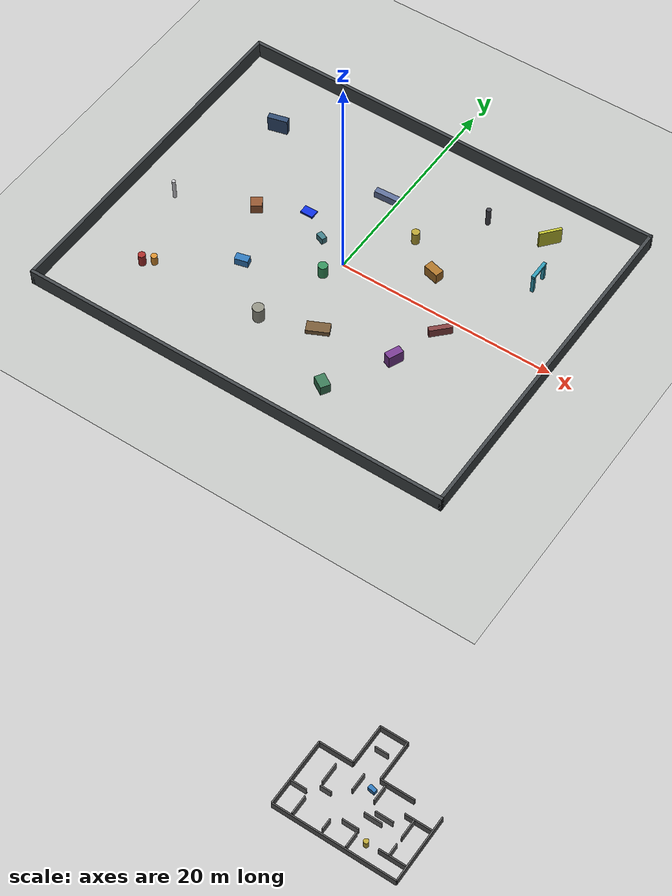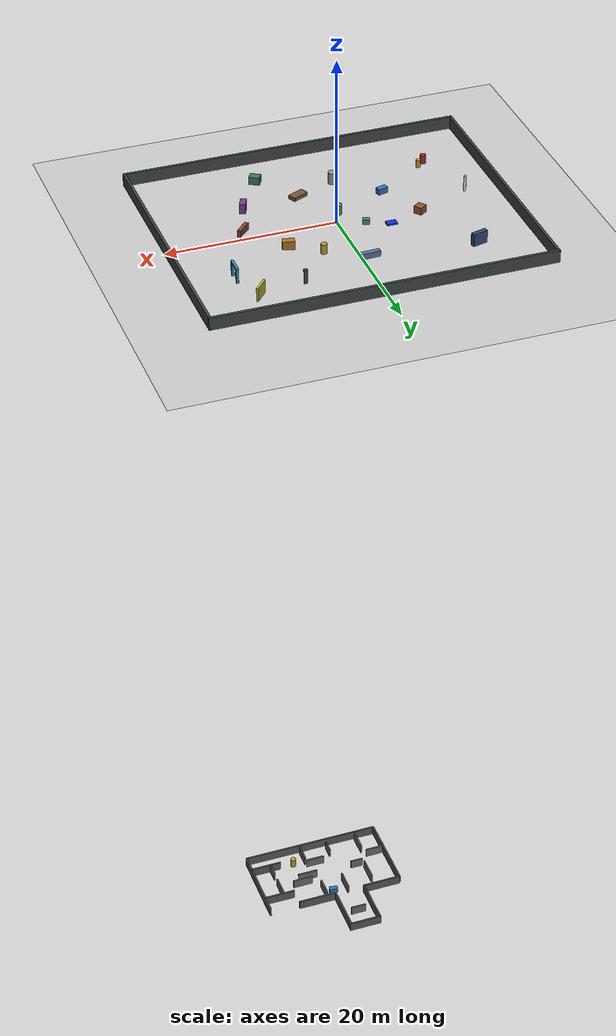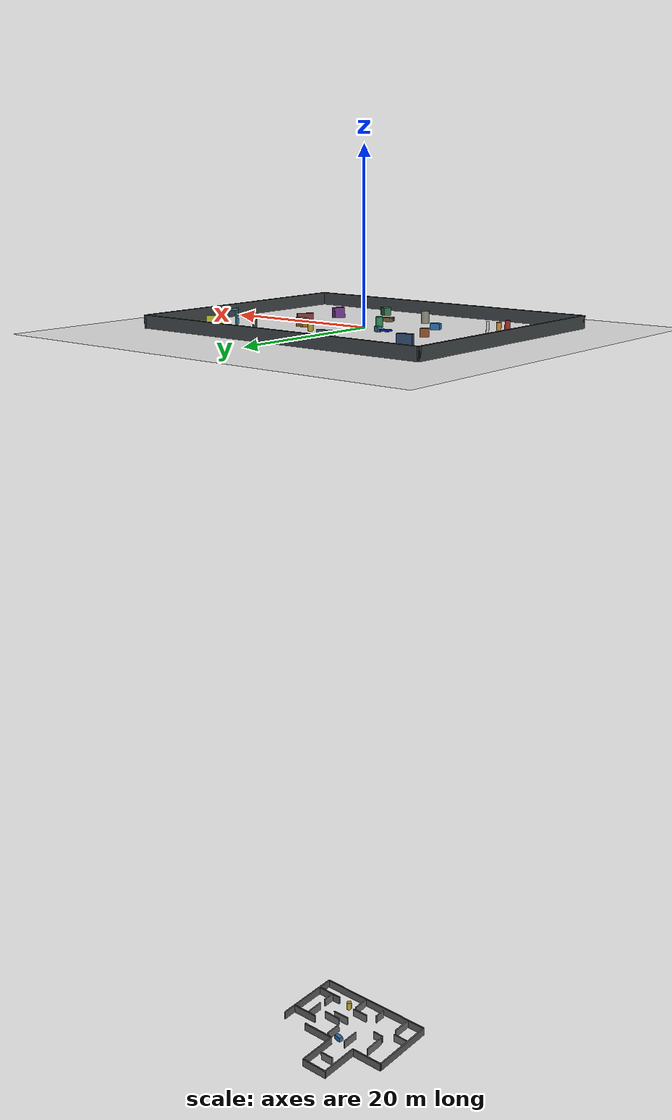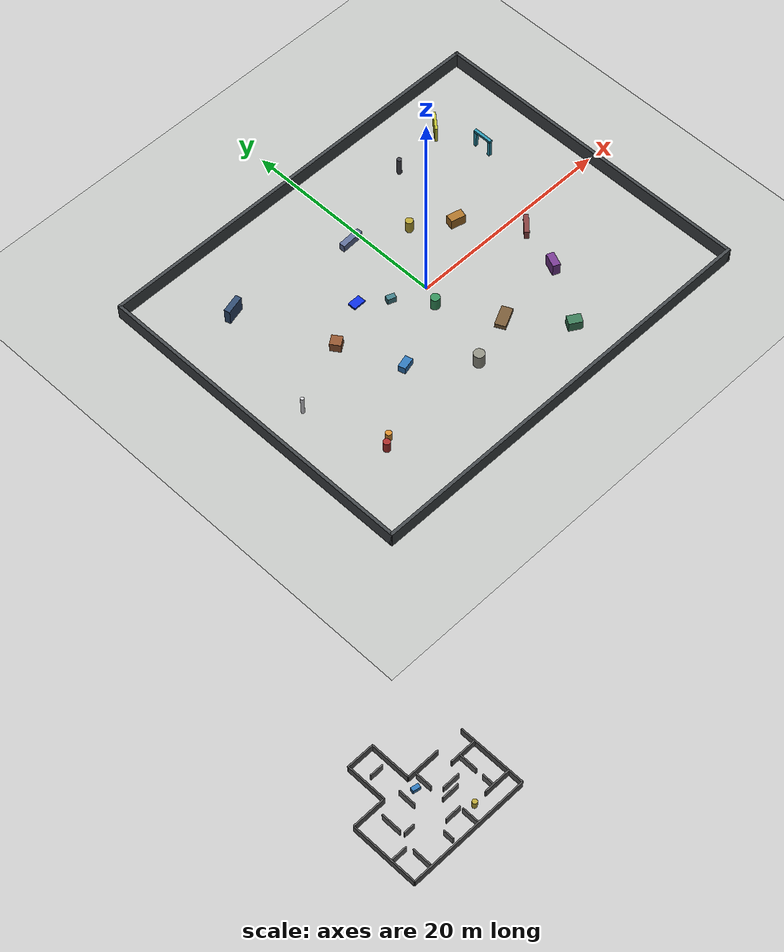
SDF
<?xml version="1.0"?>
<!-- Gazebo Harmonic world for the ROS 2 Jazzy mapping demo. -->
<sdf version="1.10">
  <world name="building_slam_world">
    <!-- Fast physics step keeps odometry and sensor updates smooth. -->
    <physics name="1ms" type="ignored">
      <max_step_size>0.001</max_step_size>
      <real_time_factor>1.0</real_time_factor>
    </physics>

    <!-- Core Gazebo systems: physics, GUI commands, scene updates, sensors, IMU. -->
    <plugin filename="gz-sim-physics-system" name="gz::sim::systems::Physics"/>
    <plugin filename="gz-sim-user-commands-system" name="gz::sim::systems::UserCommands"/>
    <plugin filename="gz-sim-scene-broadcaster-system" name="gz::sim::systems::SceneBroadcaster"/>
    <plugin filename="gz-sim-sensors-system" name="gz::sim::systems::Sensors">
      <render_engine>ogre2</render_engine>
    </plugin>
    <plugin filename="gz-sim-imu-system" name="gz::sim::systems::Imu"/>

    <!-- Directional light provides stable shadows and scene depth cues. -->
    <light type="directional" name="sun">
      <cast_shadows>true</cast_shadows>
      <pose>0 0 10 0 0 0</pose>
      <diffuse>0.8 0.8 0.8 1</diffuse>
      <specular>0.2 0.2 0.2 1</specular>
      <attenuation>
        <range>1000</range>
        <constant>0.9</constant>
        <linear>0.01</linear>
        <quadratic>0.001</quadratic>
      </attenuation>
      <direction>-0.5 0.1 -0.9</direction>
    </light>

    <!-- Flat ground plane for the cuboid robot and obstacle environment. -->
    <model name="ground_plane">
      <static>true</static>
      <link name="link">
        <collision name="collision">
          <geometry>
            <plane>
              <normal>0 0 1</normal>
              <size>40 32</size>
            </plane>
          </geometry>
        </collision>
        <visual name="visual">
          <geometry>
            <plane>
              <normal>0 0 1</normal>
              <size>40 32</size>
            </plane>
          </geometry>
          <material>
            <ambient>0.72 0.74 0.72 1</ambient>
            <diffuse>0.72 0.74 0.72 1</diffuse>
            <specular>0.1 0.1 0.1 1</specular>
          </material>
        </visual>
      </link>
    </model>

    <!-- Perimeter wall enclosing the full environment. -->
    <model name="environment_perimeter_wall">
      <static>true</static>

      <link name="perimeter_north_wall">
        <pose>0 15.85 0.75 0 0 0</pose>
        <collision name="collision"><geometry><box><size>40.0 0.3 1.5</size></box></geometry></collision>
        <visual name="visual"><geometry><box><size>40.0 0.3 1.5</size></box></geometry><material><ambient>0.25 0.27 0.28 1</ambient><diffuse>0.25 0.27 0.28 1</diffuse></material></visual>
      </link>
      <link name="perimeter_south_wall">
        <pose>0 -15.85 0.75 0 0 0</pose>
        <collision name="collision"><geometry><box><size>40.0 0.3 1.5</size></box></geometry></collision>
        <visual name="visual"><geometry><box><size>40.0 0.3 1.5</size></box></geometry><material><ambient>0.25 0.27 0.28 1</ambient><diffuse>0.25 0.27 0.28 1</diffuse></material></visual>
      </link>
      <link name="perimeter_west_wall">
        <pose>-19.85 0 0.75 0 0 0</pose>
        <collision name="collision"><geometry><box><size>0.3 32.0 1.5</size></box></geometry></collision>
        <visual name="visual"><geometry><box><size>0.3 32.0 1.5</size></box></geometry><material><ambient>0.25 0.27 0.28 1</ambient><diffuse>0.25 0.27 0.28 1</diffuse></material></visual>
      </link>
      <link name="perimeter_east_wall">
        <pose>19.85 0 0.75 0 0 0</pose>
        <collision name="collision"><geometry><box><size>0.3 32.0 1.5</size></box></geometry></collision>
        <visual name="visual"><geometry><box><size>0.3 32.0 1.5</size></box></geometry><material><ambient>0.25 0.27 0.28 1</ambient><diffuse>0.25 0.27 0.28 1</diffuse></material></visual>
      </link>
    </model>

    <!-- Dense interior floor plan kept below the floor so only the perimeter bounds the map. -->
    <model name="building_floor_plan">
      <pose>0 0 -100 0 0 0</pose>
      <static>true</static>

      <!-- Outer walls -->
      <link name="north_wall_left">
        <pose>-4.5 5 0.6 0 0 0</pose>
        <collision name="collision"><geometry><box><size>5.0 0.2 1.2</size></box></geometry></collision>
        <visual name="visual"><geometry><box><size>5.0 0.2 1.2</size></box></geometry><material><ambient>0.35 0.35 0.35 1</ambient><diffuse>0.35 0.35 0.35 1</diffuse></material></visual>
      </link>
      <link name="north_wall_right">
        <pose>4.5 5 0.6 0 0 0</pose>
        <collision name="collision"><geometry><box><size>5.0 0.2 1.2</size></box></geometry></collision>
        <visual name="visual"><geometry><box><size>5.0 0.2 1.2</size></box></geometry><material><ambient>0.35 0.35 0.35 1</ambient><diffuse>0.35 0.35 0.35 1</diffuse></material></visual>
      </link>
      <link name="south_wall">
        <pose>2 -5 0.6 0 0 0</pose>
        <collision name="collision"><geometry><box><size>18 0.2 1.2</size></box></geometry></collision>
        <visual name="visual"><geometry><box><size>18 0.2 1.2</size></box></geometry><material><ambient>0.35 0.35 0.35 1</ambient><diffuse>0.35 0.35 0.35 1</diffuse></material></visual>
      </link>
      <link name="west_wall">
        <pose>-7 0 0.6 0 0 0</pose>
        <collision name="collision"><geometry><box><size>0.2 10 1.2</size></box></geometry></collision>
        <visual name="visual"><geometry><box><size>0.2 10 1.2</size></box></geometry><material><ambient>0.35 0.35 0.35 1</ambient><diffuse>0.35 0.35 0.35 1</diffuse></material></visual>
      </link>
      <link name="east_wall">
        <pose>11 0 0.6 0 0 0</pose>
        <collision name="collision"><geometry><box><size>0.2 10 1.2</size></box></geometry></collision>
        <visual name="visual"><geometry><box><size>0.2 10 1.2</size></box></geometry><material><ambient>0.35 0.35 0.35 1</ambient><diffuse>0.35 0.35 0.35 1</diffuse></material></visual>
      </link>
      <link name="north_extension_west_wall">
        <pose>-2.0 8.0 0.6 0 0 0</pose>
        <collision name="collision"><geometry><box><size>0.2 6.0 1.2</size></box></geometry></collision>
        <visual name="visual"><geometry><box><size>0.2 6.0 1.2</size></box></geometry><material><ambient>0.35 0.35 0.35 1</ambient><diffuse>0.35 0.35 0.35 1</diffuse></material></visual>
      </link>
      <link name="north_extension_east_wall">
        <pose>2.0 8.0 0.6 0 0 0</pose>
        <collision name="collision"><geometry><box><size>0.2 6.0 1.2</size></box></geometry></collision>
        <visual name="visual"><geometry><box><size>0.2 6.0 1.2</size></box></geometry><material><ambient>0.35 0.35 0.35 1</ambient><diffuse>0.35 0.35 0.35 1</diffuse></material></visual>
      </link>
      <link name="north_extension_top_wall">
        <pose>0 11 0.6 0 0 0</pose>
        <collision name="collision"><geometry><box><size>4.2 0.2 1.2</size></box></geometry></collision>
        <visual name="visual"><geometry><box><size>4.2 0.2 1.2</size></box></geometry><material><ambient>0.35 0.35 0.35 1</ambient><diffuse>0.35 0.35 0.35 1</diffuse></material></visual>
      </link>
      <link name="east_wing_top_wall">
        <pose>9 2.8 0.6 0 0 0</pose>
        <collision name="collision"><geometry><box><size>4.0 0.2 1.2</size></box></geometry></collision>
        <visual name="visual"><geometry><box><size>4.0 0.2 1.2</size></box></geometry><material><ambient>0.35 0.35 0.35 1</ambient><diffuse>0.35 0.35 0.35 1</diffuse></material></visual>
      </link>
      <link name="east_wing_bottom_wall">
        <pose>9 -2.8 0.6 0 0 0</pose>
        <collision name="collision"><geometry><box><size>4.0 0.2 1.2</size></box></geometry></collision>
        <visual name="visual"><geometry><box><size>4.0 0.2 1.2</size></box></geometry><material><ambient>0.35 0.35 0.35 1</ambient><diffuse>0.35 0.35 0.35 1</diffuse></material></visual>
      </link>

      <!-- Interior rooms and corridors -->
      <link name="left_vertical_room_wall">
        <pose>-3.6 2.2 0.6 0 0 0</pose>
        <collision name="collision"><geometry><box><size>0.18 3.0 1.2</size></box></geometry></collision>
        <visual name="visual"><geometry><box><size>0.18 3.0 1.2</size></box></geometry><material><ambient>0.42 0.42 0.42 1</ambient><diffuse>0.42 0.42 0.42 1</diffuse></material></visual>
      </link>
      <link name="left_room_bottom_wall">
        <pose>-5.7 -1.2 0.6 0 0 0</pose>
        <collision name="collision"><geometry><box><size>2.3 0.18 1.2</size></box></geometry></collision>
        <visual name="visual"><geometry><box><size>2.3 0.18 1.2</size></box></geometry><material><ambient>0.42 0.42 0.42 1</ambient><diffuse>0.42 0.42 0.42 1</diffuse></material></visual>
      </link>
      <link name="center_vertical_wall_upper">
        <pose>0.0 3.2 0.6 0 0 0</pose>
        <collision name="collision"><geometry><box><size>0.18 2.6 1.2</size></box></geometry></collision>
        <visual name="visual"><geometry><box><size>0.18 2.6 1.2</size></box></geometry><material><ambient>0.42 0.42 0.42 1</ambient><diffuse>0.42 0.42 0.42 1</diffuse></material></visual>
      </link>
      <link name="center_vertical_wall_lower">
        <pose>0.0 -3.6 0.6 0 0 0</pose>
        <collision name="collision"><geometry><box><size>0.18 1.6 1.2</size></box></geometry></collision>
        <visual name="visual"><geometry><box><size>0.18 1.6 1.2</size></box></geometry><material><ambient>0.42 0.42 0.42 1</ambient><diffuse>0.42 0.42 0.42 1</diffuse></material></visual>
      </link>
      <link name="middle_horizontal_wall_left">
        <pose>-2.7 0.2 0.6 0 0 0</pose>
        <collision name="collision"><geometry><box><size>1.6 0.18 1.2</size></box></geometry></collision>
        <visual name="visual"><geometry><box><size>1.6 0.18 1.2</size></box></geometry><material><ambient>0.42 0.42 0.42 1</ambient><diffuse>0.42 0.42 0.42 1</diffuse></material></visual>
      </link>
      <link name="middle_horizontal_wall_right">
        <pose>4.2 0.2 0.6 0 0 0</pose>
        <collision name="collision"><geometry><box><size>2.6 0.18 1.2</size></box></geometry></collision>
        <visual name="visual"><geometry><box><size>2.6 0.18 1.2</size></box></geometry><material><ambient>0.42 0.42 0.42 1</ambient><diffuse>0.42 0.42 0.42 1</diffuse></material></visual>
      </link>
      <link name="right_room_wall">
        <pose>3.0 3.4 0.6 0 0 0</pose>
        <collision name="collision"><geometry><box><size>0.18 2.4 1.2</size></box></geometry></collision>
        <visual name="visual"><geometry><box><size>0.18 2.4 1.2</size></box></geometry><material><ambient>0.42 0.42 0.42 1</ambient><diffuse>0.42 0.42 0.42 1</diffuse></material></visual>
      </link>
      <link name="right_room_bottom_wall">
        <pose>5.2 1.1 0.6 0 0 0</pose>
        <collision name="collision"><geometry><box><size>2.6 0.18 1.2</size></box></geometry></collision>
        <visual name="visual"><geometry><box><size>2.6 0.18 1.2</size></box></geometry><material><ambient>0.42 0.42 0.42 1</ambient><diffuse>0.42 0.42 0.42 1</diffuse></material></visual>
      </link>
      <link name="east_wing_divider_top">
        <pose>8.4 1.4 0.6 0 0 0</pose>
        <collision name="collision"><geometry><box><size>0.18 2.8 1.2</size></box></geometry></collision>
        <visual name="visual"><geometry><box><size>0.18 2.8 1.2</size></box></geometry><material><ambient>0.42 0.42 0.42 1</ambient><diffuse>0.42 0.42 0.42 1</diffuse></material></visual>
      </link>
      <link name="east_wing_divider_bottom">
        <pose>8.4 -1.9 0.6 0 0 0</pose>
        <collision name="collision"><geometry><box><size>0.18 1.8 1.2</size></box></geometry></collision>
        <visual name="visual"><geometry><box><size>0.18 1.8 1.2</size></box></geometry><material><ambient>0.42 0.42 0.42 1</ambient><diffuse>0.42 0.42 0.42 1</diffuse></material></visual>
      </link>
      <link name="north_extension_room_wall">
        <pose>0 8.3 0.6 0 0 0</pose>
        <collision name="collision"><geometry><box><size>2.0 0.18 1.2</size></box></geometry></collision>
        <visual name="visual"><geometry><box><size>2.0 0.18 1.2</size></box></geometry><material><ambient>0.42 0.42 0.42 1</ambient><diffuse>0.42 0.42 0.42 1</diffuse></material></visual>
      </link>
      <link name="bottom_room_wall_left">
        <pose>-4.2 -3.4 0.6 0 0 0</pose>
        <collision name="collision"><geometry><box><size>0.18 2.8 1.2</size></box></geometry></collision>
        <visual name="visual"><geometry><box><size>0.18 2.8 1.2</size></box></geometry><material><ambient>0.42 0.42 0.42 1</ambient><diffuse>0.42 0.42 0.42 1</diffuse></material></visual>
      </link>
      <link name="bottom_room_wall_right">
        <pose>3.6 -3.6 0.6 0 0 0</pose>
        <collision name="collision"><geometry><box><size>0.18 2.4 1.2</size></box></geometry></collision>
        <visual name="visual"><geometry><box><size>0.18 2.4 1.2</size></box></geometry><material><ambient>0.42 0.42 0.42 1</ambient><diffuse>0.42 0.42 0.42 1</diffuse></material></visual>
      </link>
      <link name="bottom_corridor_wall">
        <pose>2.4 -2.0 0.6 0 0 0</pose>
        <collision name="collision"><geometry><box><size>2.4 0.18 1.2</size></box></geometry></collision>
        <visual name="visual"><geometry><box><size>2.4 0.18 1.2</size></box></geometry><material><ambient>0.42 0.42 0.42 1</ambient><diffuse>0.42 0.42 0.42 1</diffuse></material></visual>
      </link>

      <!-- Furniture-like obstacles for richer lidar features -->
      <link name="table_block_b">
        <pose>1.8 3.6 0.35 0 0 -0.2</pose>
        <collision name="collision"><geometry><box><size>1.1 0.6 0.7</size></box></geometry></collision>
        <visual name="visual"><geometry><box><size>1.1 0.6 0.7</size></box></geometry><material><ambient>0.18 0.45 0.7 1</ambient><diffuse>0.18 0.45 0.7 1</diffuse></material></visual>
      </link>
      <link name="pillar_a">
        <pose>5.2 -2.8 0.6 0 0 0</pose>
        <collision name="collision"><geometry><cylinder><radius>0.35</radius><length>1.2</length></cylinder></geometry></collision>
        <visual name="visual"><geometry><cylinder><radius>0.35</radius><length>1.2</length></cylinder></geometry><material><ambient>0.7 0.62 0.2 1</ambient><diffuse>0.7 0.62 0.2 1</diffuse></material></visual>
      </link>
    </model>

    <!-- Sparse non-wall landmarks for SLAM scan-matching in the open perimeter. -->
    <model name="sparse_slam_landmarks">
      <static>true</static>
      <link name="low_table">
        <pose>-7.0 -4.5 0.35 0 0 0.25</pose>
        <collision name="collision"><geometry><box><size>1.2 0.7 0.7</size></box></geometry></collision>
        <visual name="visual"><geometry><box><size>1.2 0.7 0.7</size></box></geometry><material><ambient>0.18 0.45 0.7 1</ambient><diffuse>0.18 0.45 0.7 1</diffuse></material></visual>
      </link>
      <link name="pillar_west">
        <pose>3.5 5.5 0.6 0 0 0</pose>
        <collision name="collision"><geometry><cylinder><radius>0.35</radius><length>1.2</length></cylinder></geometry></collision>
        <visual name="visual"><geometry><cylinder><radius>0.35</radius><length>1.2</length></cylinder></geometry><material><ambient>0.7 0.62 0.2 1</ambient><diffuse>0.7 0.62 0.2 1</diffuse></material></visual>
      </link>
      <link name="tall_marker">
        <pose>9.0 -6.0 0.6 0 0 -0.4</pose>
        <collision name="collision"><geometry><box><size>0.7 1.4 1.2</size></box></geometry></collision>
        <visual name="visual"><geometry><box><size>0.7 1.4 1.2</size></box></geometry><material><ambient>0.45 0.22 0.55 1</ambient><diffuse>0.45 0.22 0.55 1</diffuse></material></visual>
      </link>
      <link name="crate_cluster_west">
        <pose>-9.5 1.0 0.45 0 0 0.6</pose>
        <collision name="collision"><geometry><box><size>1.0 1.0 0.9</size></box></geometry></collision>
        <visual name="visual"><geometry><box><size>1.0 1.0 0.9</size></box></geometry><material><ambient>0.55 0.32 0.18 1</ambient><diffuse>0.55 0.32 0.18 1</diffuse></material></visual>
      </link>
      <link name="pillar_center">
        <pose>-0.8 -1.8 0.6 0 0 0</pose>
        <collision name="collision"><geometry><cylinder><radius>0.42</radius><length>1.2</length></cylinder></geometry></collision>
        <visual name="visual"><geometry><cylinder><radius>0.42</radius><length>1.2</length></cylinder></geometry><material><ambient>0.2 0.55 0.35 1</ambient><diffuse>0.2 0.55 0.35 1</diffuse></material></visual>
      </link>
      <link name="bench_north">
        <pose>-1.0 8.0 0.35 0 0 0.05</pose>
        <collision name="collision"><geometry><box><size>2.2 0.55 0.7</size></box></geometry></collision>
        <visual name="visual"><geometry><box><size>2.2 0.55 0.7</size></box></geometry><material><ambient>0.36 0.42 0.58 1</ambient><diffuse>0.36 0.42 0.58 1</diffuse></material></visual>
      </link>
      <link name="crate_east">
        <pose>6.8 3.2 0.5 0 0 -0.25</pose>
        <collision name="collision"><geometry><box><size>1.4 0.8 1.0</size></box></geometry></collision>
        <visual name="visual"><geometry><box><size>1.4 0.8 1.0</size></box></geometry><material><ambient>0.65 0.44 0.16 1</ambient><diffuse>0.65 0.44 0.16 1</diffuse></material></visual>
      </link>
      <link name="round_column_south">
        <pose>-2.5 -8.5 0.7 0 0 0</pose>
        <collision name="collision"><geometry><cylinder><radius>0.5</radius><length>1.4</length></cylinder></geometry></collision>
        <visual name="visual"><geometry><cylinder><radius>0.5</radius><length>1.4</length></cylinder></geometry><material><ambient>0.55 0.55 0.50 1</ambient><diffuse>0.55 0.55 0.50 1</diffuse></material></visual>
      </link>
      <link name="angled_barrier_southeast">
        <pose>10.5 -1.5 0.4 0 0 0.8</pose>
        <collision name="collision"><geometry><box><size>2.0 0.45 0.8</size></box></geometry></collision>
        <visual name="visual"><geometry><box><size>2.0 0.45 0.8</size></box></geometry><material><ambient>0.5 0.24 0.24 1</ambient><diffuse>0.5 0.24 0.24 1</diffuse></material></visual>
      </link>
      <link name="short_block_near_start">
        <pose>-3.0 1.2 0.3 0 0 -0.35</pose>
        <collision name="collision"><geometry><box><size>0.8 0.5 0.6</size></box></geometry></collision>
        <visual name="visual"><geometry><box><size>0.8 0.5 0.6</size></box></geometry><material><ambient>0.25 0.48 0.52 1</ambient><diffuse>0.25 0.48 0.52 1</diffuse></material></visual>
      </link>
      <link name="equipment_rack_northwest">
        <pose>-13.2 9.4 0.75 0 0 0.25</pose>
        <collision name="collision"><geometry><box><size>1.8 0.55 1.5</size></box></geometry></collision>
        <visual name="visual"><geometry><box><size>1.8 0.55 1.5</size></box></geometry><material><ambient>0.18 0.28 0.42 1</ambient><diffuse>0.18 0.28 0.42 1</diffuse></material></visual>
      </link>
      <link name="barrel_pair_southwest_a">
        <pose>-13.8 -9.2 0.55 0 0 0</pose>
        <collision name="collision"><geometry><cylinder><radius>0.32</radius><length>1.1</length></cylinder></geometry></collision>
        <visual name="visual"><geometry><cylinder><radius>0.32</radius><length>1.1</length></cylinder></geometry><material><ambient>0.64 0.17 0.16 1</ambient><diffuse>0.64 0.17 0.16 1</diffuse></material></visual>
      </link>
      <link name="barrel_pair_southwest_b">
        <pose>-13.0 -8.6 0.45 0 0 0</pose>
        <collision name="collision"><geometry><cylinder><radius>0.28</radius><length>0.9</length></cylinder></geometry></collision>
        <visual name="visual"><geometry><cylinder><radius>0.28</radius><length>0.9</length></cylinder></geometry><material><ambient>0.82 0.54 0.18 1</ambient><diffuse>0.82 0.54 0.18 1</diffuse></material></visual>
      </link>
      <link name="inspection_gate_east_left">
        <pose>14.3 6.5 0.9 0 0 0</pose>
        <collision name="collision"><geometry><box><size>0.28 0.28 1.8</size></box></geometry></collision>
        <visual name="visual"><geometry><box><size>0.28 0.28 1.8</size></box></geometry><material><ambient>0.18 0.58 0.68 1</ambient><diffuse>0.18 0.58 0.68 1</diffuse></material></visual>
      </link>
      <link name="inspection_gate_east_right">
        <pose>14.3 8.1 0.9 0 0 0</pose>
        <collision name="collision"><geometry><box><size>0.28 0.28 1.8</size></box></geometry></collision>
        <visual name="visual"><geometry><box><size>0.28 0.28 1.8</size></box></geometry><material><ambient>0.18 0.58 0.68 1</ambient><diffuse>0.18 0.58 0.68 1</diffuse></material></visual>
      </link>
      <link name="inspection_gate_east_top">
        <pose>14.3 7.3 1.75 0 0 0</pose>
        <collision name="collision"><geometry><box><size>0.3 1.9 0.22</size></box></geometry></collision>
        <visual name="visual"><geometry><box><size>0.3 1.9 0.22</size></box></geometry><material><ambient>0.18 0.58 0.68 1</ambient><diffuse>0.18 0.58 0.68 1</diffuse></material></visual>
      </link>
      <link name="low_pallets_center">
        <pose>2.2 -6.8 0.22 0 0 0.45</pose>
        <collision name="collision"><geometry><box><size>2.0 1.0 0.44</size></box></geometry></collision>
        <visual name="visual"><geometry><box><size>2.0 1.0 0.44</size></box></geometry><material><ambient>0.45 0.34 0.21 1</ambient><diffuse>0.45 0.34 0.21 1</diffuse></material></visual>
      </link>
      <link name="sensor_tripod_north">
        <pose>7.4 10.6 0.85 0 0 -0.15</pose>
        <collision name="collision"><geometry><cylinder><radius>0.22</radius><length>1.7</length></cylinder></geometry></collision>
        <visual name="visual"><geometry><cylinder><radius>0.22</radius><length>1.7</length></cylinder></geometry><material><ambient>0.25 0.25 0.28 1</ambient><diffuse>0.25 0.25 0.28 1</diffuse></material></visual>
      </link>
      <link name="bright_panel_northeast">
        <pose>12.8 11.6 0.8 0 0 -0.7</pose>
        <collision name="collision"><geometry><box><size>0.25 2.0 1.6</size></box></geometry></collision>
        <visual name="visual"><geometry><box><size>0.25 2.0 1.6</size></box></geometry><material><ambient>0.72 0.72 0.18 1</ambient><diffuse>0.72 0.72 0.18 1</diffuse></material></visual>
      </link>
      <link name="offset_crate_south">
        <pose>5.8 -11.4 0.48 0 0 -0.55</pose>
        <collision name="collision"><geometry><box><size>1.25 0.9 0.95</size></box></geometry></collision>
        <visual name="visual"><geometry><box><size>1.25 0.9 0.95</size></box></geometry><material><ambient>0.22 0.46 0.33 1</ambient><diffuse>0.22 0.46 0.33 1</diffuse></material></visual>
      </link>
      <link name="slender_marker_west">
        <pose>-16.0 -1.8 0.95 0 0 0</pose>
        <collision name="collision"><geometry><cylinder><radius>0.16</radius><length>1.9</length></cylinder></geometry></collision>
        <visual name="visual"><geometry><cylinder><radius>0.16</radius><length>1.9</length></cylinder></geometry><material><ambient>0.8 0.8 0.82 1</ambient><diffuse>0.8 0.8 0.82 1</diffuse></material></visual>
      </link>
    </model>

    <!-- The robot model is split into robot.sdf and resolved through model.config. -->
    <include>
      <uri>model://robot</uri>
      <pose>-5.4 2.8 0.12 0 0 0</pose>
    </include>
  </world>
</sdf>

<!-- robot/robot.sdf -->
<!-- Standalone hover-capable cuboid robot included by environment.world. -->
<sdf version="1.10">
  <model name="vehicle_blue" canonical_link="base_link">
    <!-- The visible robot is one flat cuboid that can translate in 3D. -->
    <link name="base_link">
      <pose relative_to="__model__">0 0 0.38 0 0 0</pose>
      <gravity>false</gravity>

      <!-- Inertia is sized for a 1.2 m x 0.8 m x 0.18 m cuboid. -->
      <inertial>
        <mass>4.0</mass>
        <inertia>
          <ixx>0.224</ixx>
          <ixy>0</ixy>
          <ixz>0</ixz>
          <iyy>0.491</iyy>
          <iyz>0</iyz>
          <izz>0.693</izz>
        </inertia>
      </inertial>

      <!-- A low-friction contact surface keeps floor contact gentle when descending. -->
      <collision name="collision">
        <geometry>
          <box>
            <size>1.2 0.8 0.18</size>
          </box>
        </geometry>
        <surface>
          <friction>
            <ode>
              <mu>0.1</mu>
              <mu2>0.1</mu2>
            </ode>
          </friction>
        </surface>
      </collision>

      <!-- The only visible body geometry: a blue, flat cuboid. -->
      <visual name="visual">
        <geometry>
          <box>
            <size>1.2 0.8 0.18</size>
          </box>
        </geometry>
        <material>
          <ambient>0.05 0.18 0.85 1</ambient>
          <diffuse>0.05 0.18 0.85 1</diffuse>
        </material>
      </visual>

      <!-- 3D lidar kept at the existing base_link-relative pose and topic. -->
      <sensor name="gpu_3d_lidar" type="gpu_lidar">
        <pose>0.45 0 0.32 0 0 0</pose>
        <topic>/points_raw</topic>
        <update_rate>10</update_rate>
        <ray>
          <scan>
            <horizontal>
              <samples>1024</samples>
              <resolution>1</resolution>
              <min_angle>-3.14159</min_angle>
              <max_angle>3.14159</max_angle>
            </horizontal>
            <vertical>
              <samples>16</samples>
              <resolution>1</resolution>
              <min_angle>-0.261799</min_angle>
              <max_angle>0.261799</max_angle>
            </vertical>
          </scan>
          <range>
            <min>0.08</min>
            <max>12.0</max>
            <resolution>0.01</resolution>
          </range>
        </ray>
        <always_on>1</always_on>
        <visualize>true</visualize>
      </sensor>

      <!-- Front RGB camera kept at the existing pose and topic. -->
      <sensor name="front_camera" type="camera">
        <pose>0.68 0 0.36 0 0 0</pose>
        <topic>/front_camera/image</topic>
        <update_rate>30</update_rate>
        <camera>
          <horizontal_fov>1.3962634</horizontal_fov>
          <image>
            <width>960</width>
            <height>540</height>
            <format>R8G8B8</format>
          </image>
          <clip>
            <near>0.05</near>
            <far>100.0</far>
          </clip>
        </camera>
        <always_on>1</always_on>
        <visualize>true</visualize>
      </sensor>

      <!-- IMU kept on the base frame so /imu remains unchanged. -->
      <sensor name="imu_sensor" type="imu">
        <pose>0 0 0 0 0 0</pose>
        <topic>/imu</topic>
        <update_rate>100</update_rate>
        <always_on>1</always_on>
      </sensor>
    </link>

    <!-- VelocityControl consumes /cmd_vel and directly moves the model in 3D. -->
    <plugin filename="gz-sim-velocity-control-system" name="gz::sim::systems::VelocityControl">
      <topic>/cmd_vel</topic>
    </plugin>

    <!-- OdometryPublisher publishes 3D /odom for the hover-capable cuboid. -->
    <plugin filename="gz-sim-odometry-publisher-system" name="gz::sim::systems::OdometryPublisher">
      <odom_frame>odom</odom_frame>
      <robot_base_frame>base_link</robot_base_frame>
      <odom_publish_frequency>50</odom_publish_frequency>
      <odom_topic>/odom</odom_topic>
      <dimensions>3</dimensions>
    </plugin>
  </model>
</sdf>
